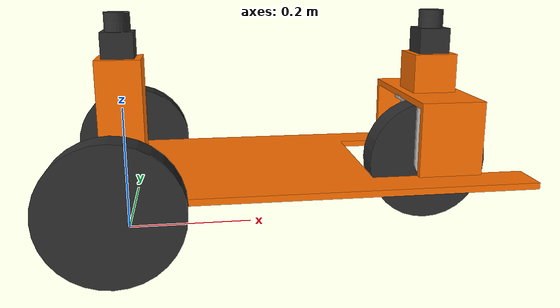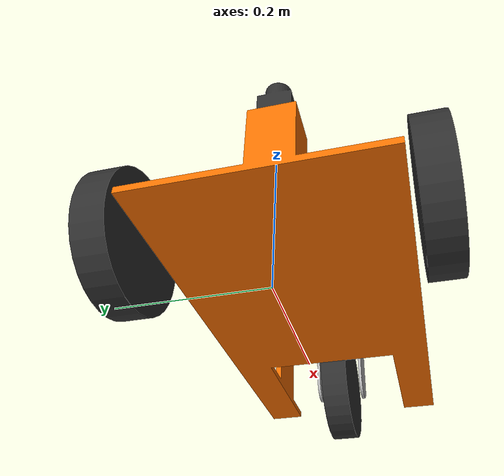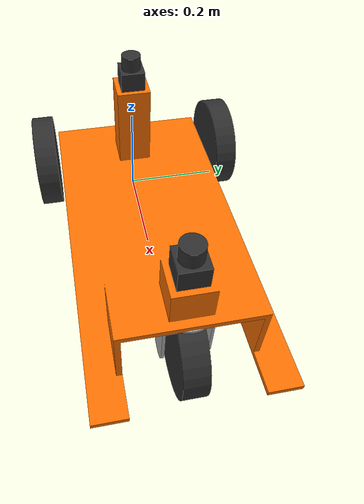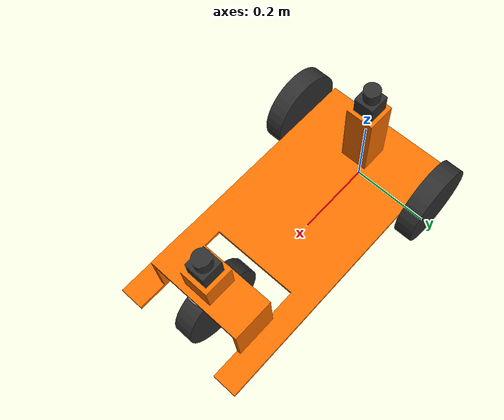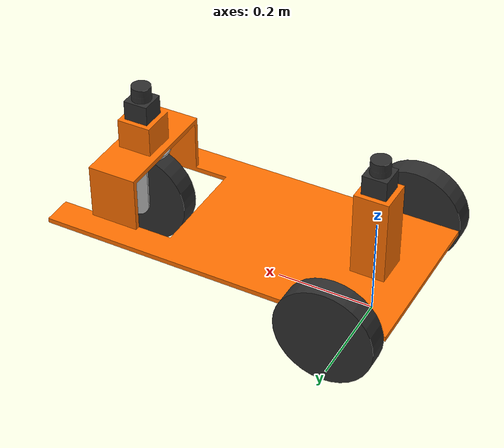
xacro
<?xml version="1.0"?>
<robot name="tricycle" xmlns:xacro="http://ros.org/wiki/xacro">
  <xacro:property name="base_length" value="0.72"/>
  <xacro:property name="wheel_diam" value="0.2"/>
  <xacro:property name="rear_wheel_dist" value="0.4"/>
  <xacro:property name="wheel_base" value="0.5"/>
  <xacro:property name="pi" value="3.1415"/>

  <material name="orange">
    <color rgba="1 0.44 0 1"/>
  </material>

  <material name="black">
    <color rgba="0.18 0.18 0.18 1"/>
  </material>

  <material name="gray">
    <color rgba="0.7 0.7 0.7 1"/>
  </material>

  <xacro:macro name="default_inertial" params="mass">
    <inertial>
      <mass value="${mass}" />
      <inertia ixx="1.0" ixy="0.0" ixz="0.0" iyy="1.0" iyz="0.0" izz="1.0" />
    </inertial>
  </xacro:macro>

  <xacro:macro name="rear_wheel" params="prefix reflect">
    <link name="${prefix}_wheel">
      <visual>
        <geometry>
           <mesh filename="package://tricycle/meshes/wheel.stl"/>
        </geometry>
        <material name="black"/>
      </visual>
      <collision>
        <geometry>
          <mesh filename="package://tricycle/meshes/wheel.stl"/>
        </geometry>
      </collision>
      <xacro:default_inertial mass="1.4"/>
    </link>

    <joint name="${prefix}_wheel_joint" type="continuous">
      <parent link="base_link"/>
      <child link="${prefix}_wheel"/>
      <axis xyz="0 1 0"/>
      <origin xyz="0 ${-reflect*rear_wheel_dist/2} ${wheel_diam/2}" rpy="0 0 0"/>
    </joint>
  </xacro:macro>

  <link name="base_link">
    <visual>
      <geometry>
        <mesh filename="package://tricycle/meshes/base.stl"/>
      </geometry>
      <material name="orange"/>
      <origin xyz="${base_length/2-wheel_diam/2} 0 0.187" rpy="0 0 0"/>-->
    </visual>
    <collision>
      <geometry>
        <mesh filename="package://tricycle/meshes/base.stl"/>
      </geometry>
      <origin xyz="${base_length/2-wheel_diam/2} 0 0.187" rpy="0 0 0"/>
    </collision>
    <xacro:default_inertial mass="2.4"/>
  </link>

  <xacro:rear_wheel prefix="right" reflect="1"/>
  <xacro:rear_wheel prefix="left" reflect="-1"/>

  <link name="caster">
    <visual>
      <geometry>
        <mesh filename="package://tricycle/meshes/caster.stl"/>
      </geometry>
      <material name="gray"/>
    </visual>
    <collision>
      <geometry>
        <mesh filename="package://tricycle/meshes/caster.stl"/>
      </geometry>
    </collision>
    <xacro:default_inertial mass="0.14"/>
  </link>

  <joint name="steering_joint" type="revolute">
    <parent link="base_link"/>
    <child link="caster"/>
    <origin xyz="${wheel_base} 0 0.14125" rpy="0 0 0"/>
    <axis xyz="0 0 1"/>
    <limit effort="1000.0" lower="${-pi/2}" upper="${pi/2}" velocity="0.5"/>
  </joint>

  <link name="front_wheel">
    <visual>
      <geometry>
        <mesh filename="package://tricycle/meshes/wheel.stl"/>
      </geometry>
      <material name="black"/>
    </visual>
    <collision>
      <geometry>
        <mesh filename="package://tricycle/meshes/wheel.stl"/>
      </geometry>
    </collision>
    <xacro:default_inertial mass="1.4"/>
  </link>

  <joint name="front_wheel_joint" type="continuous">
    <parent link="caster"/>
    <child link="front_wheel"/>
    <axis xyz="0 1 0"/>
    <origin xyz="0 0 -0.04125" rpy="0 0 0"/>
  </joint>

  <link name="front_lidar">
    <visual>
      <geometry>
        <mesh filename="package://tricycle/meshes/lidar.stl"/>
      </geometry>
      <material name="black"/>
    </visual>
    <collision>
      <geometry>
        <mesh filename="package://tricycle/meshes/lidar.stl"/>
      </geometry>
    </collision>
    <xacro:default_inertial mass="0.2"/>
  </link>

  <joint name="front_lidar_joint" type="fixed">
    <parent link="base_link"/>
    <child link="front_lidar"/>
    <origin xyz="${wheel_base} 0 0.315" rpy="0 0 0"/>
  </joint>

  <link name="rear_lidar">
    <visual>
      <geometry>
        <mesh filename="package://tricycle/meshes/lidar.stl"/>
      </geometry>
      <material name="black"/>
    </visual>
    <collision>
      <geometry>
        <mesh filename="package://tricycle/meshes/lidar.stl"/>
      </geometry>
    </collision>
    <xacro:default_inertial mass="0.2"/>
  </link>

  <joint name="rear_lidar_joint" type="fixed">
    <parent link="base_link"/>
    <child link="rear_lidar"/>
    <origin xyz="0 0 0.315" rpy="0 0 ${pi}"/>
  </joint>

</robot>
